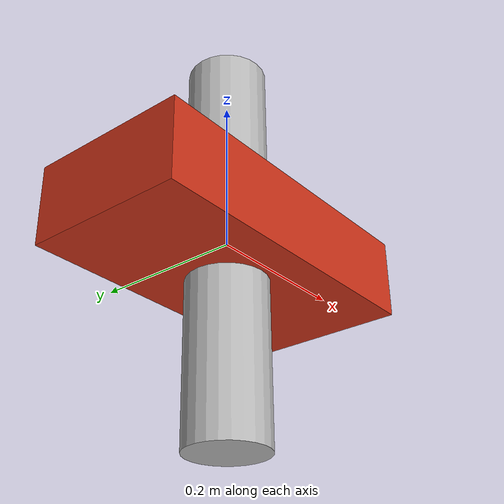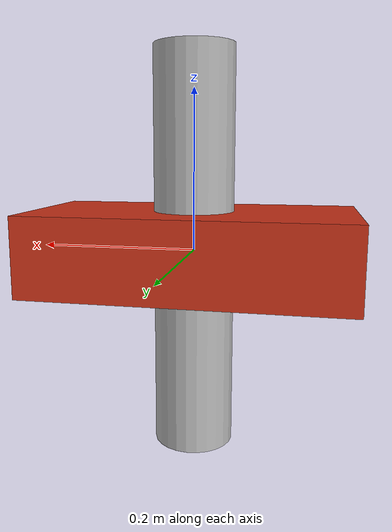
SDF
<?xml version="1.0"?>
<sdf version="1.9">
  <model name="two_link_arm">
    <link name="base_link">
      <inertial>
        <mass value="2.0"/>
        <inertia ixx="0.01" ixy="0" ixz="0" iyy="0.01" iyz="0" izz="0.01"/>
      </inertial>
      <visual name="base_visual">
        <pose>0 0 0 0 0 0</pose>
        <geometry>
          <box>
            <size>0.4 0.2 0.1</size>
          </box>
        </geometry>
        <material>
          <diffuse>0.8 0.2 0.1 1</diffuse>
        </material>
      </visual>
      <collision name="base_collision">
        <geometry>
          <box>
            <size>0.4 0.2 0.1</size>
          </box>
        </geometry>
      </collision>
    </link>
    <link name="upper_link">
      <inertial>
        <mass value="1.0"/>
        <inertia ixx="0.005" ixy="0" ixz="0" iyy="0.005" iyz="0" izz="0.005"/>
      </inertial>
      <visual name="upper_visual">
        <geometry>
          <cylinder>
            <radius>0.05</radius>
            <length>0.5</length>
          </cylinder>
        </geometry>
      </visual>
    </link>
    <link name="tip_link">
      <inertial>
        <mass value="0.5"/>
        <inertia ixx="0.001" ixy="0" ixz="0" iyy="0.001" iyz="0" izz="0.001"/>
      </inertial>
      <visual name="tip_visual">
        <geometry>
          <sphere>
            <radius>0.03</radius>
          </sphere>
        </geometry>
      </visual>
    </link>
    <joint name="shoulder_joint" type="revolute">
      <parent link="base_link"/>
      <child link="upper_link"/>
      <pose>0 0 0.05 0 0 0</pose>
      <axis xyz="0 0 1"/>
      <limit lower="-3.14" upper="3.14" effort="10" velocity="2"/>
    </joint>
    <joint name="elbow_joint" type="revolute">
      <parent link="upper_link"/>
      <child link="tip_link"/>
      <pose>0 0.25 0 0 0 0</pose>
      <axis xyz="0 0 1"/>
      <limit lower="-1.57" upper="1.57" effort="5" velocity="1"/>
    </joint>
  </model>
</sdf>
